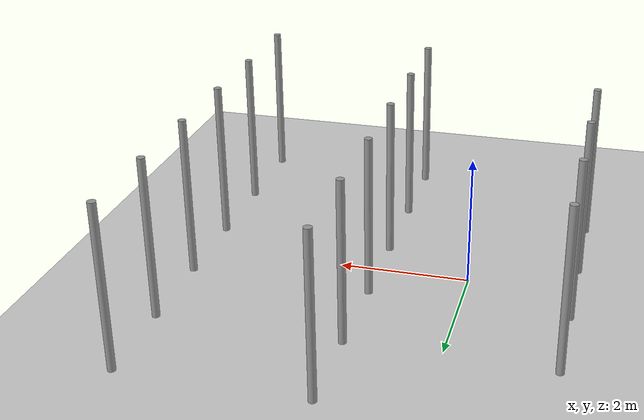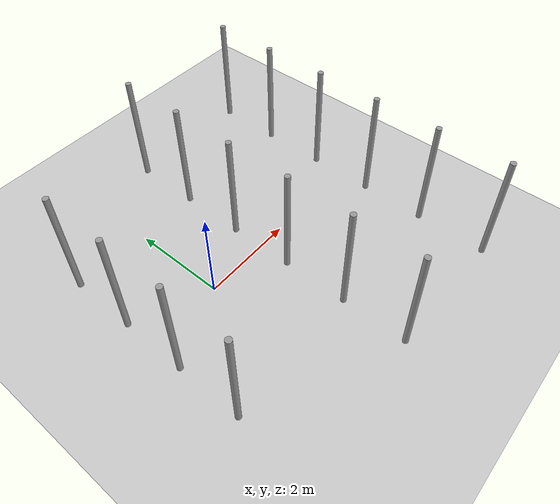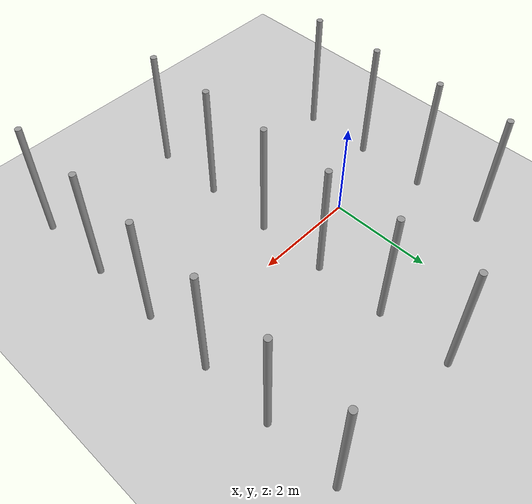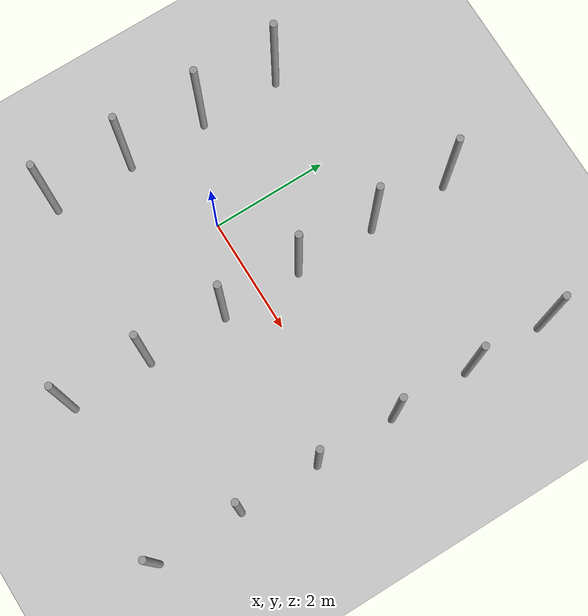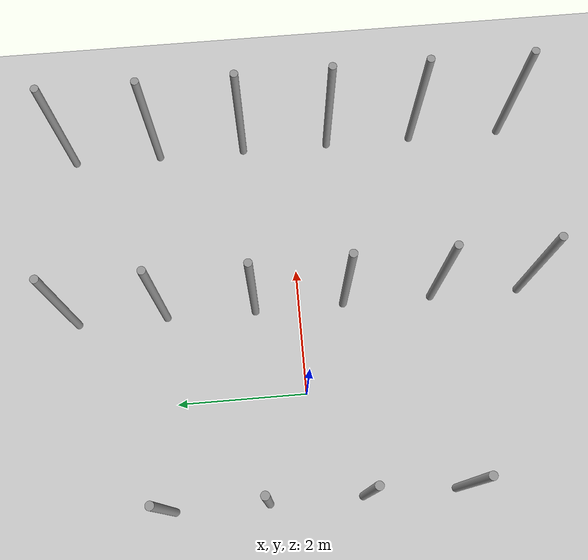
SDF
<sdf version="1.6">
 <world name="default">
  <light name="sun" type="directional">
   <pose>0 0 10 0 -0 0</pose>
   <diffuse>0.8 0.8 0.8 1</diffuse>
   <specular>0.2 0.2 0.2 1</specular>
   <attenuation>
    <range>1000</range>
    <constant>0.9</constant>
    <linear>0.01</linear>
    <quadratic>0.001</quadratic>
   </attenuation>
   <direction>-0.5 0.1 -0.9</direction>
  </light>
  <model name="ground_plane">
   <static>1</static>
   <link name="link">
    <collision name="collision">
     <geometry><plane><normal>0 0 1</normal><size>100 100</size></plane></geometry>
     <surface><friction><ode><mu>100</mu><mu2>50</mu2></ode></friction></surface>
    </collision>
    <visual name="visual">
     <cast_shadows>0</cast_shadows>
     <geometry><plane><normal>0 0 1</normal><size>100 100</size></plane></geometry>
     <material>
      <script><uri>file://media/materials/scripts/gazebo.material</uri><name>Gazebo/Grey</name></script>
     </material>
    </visual>
   </link>
  </model>
  <gravity>0 0 -9.8</gravity>
  <magnetic_field>6e-06 2.3e-05 -4.2e-05</magnetic_field>
  <atmosphere type="adiabatic"/>
  <physics name="default_physics" default="0" type="ode">
   <max_step_size>0.001</max_step_size>
   <real_time_factor>1</real_time_factor>
   <real_time_update_rate>1000</real_time_update_rate>
  </physics>
  <scene><ambient>0.4 0.4 0.4 1</ambient><background>0.7 0.7 0.7 1</background><shadows>1</shadows></scene>
  <spherical_coordinates>
   <surface_model>EARTH_WGS84</surface_model>
   <latitude_deg>0</latitude_deg>
   <longitude_deg>0</longitude_deg>
   <elevation>0</elevation>
   <heading_deg>0</heading_deg>
  </spherical_coordinates>
  <model name="pole">
   <link name="link_0">
    <inertial>
     <mass>0.0364582</mass>
     <inertia>
      <ixx>0.00312124</ixx>
      <ixy>0</ixy>
      <ixz>0</ixz>
      <iyy>0.00312124</iyy>
      <iyz>0</iyz>
      <izz>0.00016615</izz>
     </inertia>
    </inertial>
    <visual name="visual">
     <geometry><cylinder><radius>0.06</radius><length>2.5</length></cylinder></geometry>
     <material>
      <lighting>1</lighting>
      <script><uri>file://media/materials/scripts/gazebo.material</uri><name>Gazebo/Grey</name></script>
      <ambient>0.3 0.3 0.3 1</ambient>
      <diffuse>0.7 0.7 0.7 1</diffuse>
      <specular>0.01 0.01 0.01 1</specular>
      <emissive>0 0 0 1</emissive>
      <shader type="vertex"><normal_map>__default__</normal_map></shader>
     </material>
    </visual>
    <collision name="collision">
     <geometry><cylinder><radius>0.06</radius><length>2.5</length></cylinder></geometry>
     <surface>
      <friction>
       <ode><mu>1</mu><mu2>1</mu2><fdir1>0 0 0</fdir1><slip1>0</slip1><slip2>0</slip2></ode>
       <torsional>
        <coefficient>1</coefficient>
        <patch_radius>0</patch_radius>
        <surface_radius>0</surface_radius>
        <use_patch_radius>1</use_patch_radius>
        <ode><slip>0</slip></ode>
       </torsional>
      </friction>
      <bounce><restitution_coefficient>0</restitution_coefficient><threshold>1e+06</threshold></bounce>
      <contact>
       <collide_without_contact>0</collide_without_contact>
       <collide_without_contact_bitmask>1</collide_without_contact_bitmask>
       <collide_bitmask>1</collide_bitmask>
       <ode>
        <soft_cfm>0</soft_cfm>
        <soft_erp>0.2</soft_erp>
        <kp>1e+13</kp>
        <kd>1</kd>
        <max_vel>0.01</max_vel>
        <min_depth>0</min_depth>
       </ode>
       <bullet>
        <split_impulse>1</split_impulse>
        <split_impulse_penetration_threshold>-0.01</split_impulse_penetration_threshold>
        <soft_cfm>0</soft_cfm>
        <soft_erp>0.2</soft_erp>
        <kp>1e+13</kp>
        <kd>1</kd>
       </bullet>
      </contact>
     </surface>
    </collision>
   </link>
   <static>0</static>
   <pose>1.38801 0.699218 1.24999 0 -2e-06 -0.041029</pose>
  </model>
  <model name="pole_0">
   <link name="link_0">
    <inertial>
     <mass>0.0364582</mass>
     <inertia>
      <ixx>0.00312124</ixx>
      <ixy>0</ixy>
      <ixz>0</ixz>
      <iyy>0.00312124</iyy>
      <iyz>0</iyz>
      <izz>0.00016615</izz>
     </inertia>
    </inertial>
    <visual name="visual">
     <geometry><cylinder><radius>0.06</radius><length>2.5</length></cylinder></geometry>
     <material>
      <lighting>1</lighting>
      <script><uri>file://media/materials/scripts/gazebo.material</uri><name>Gazebo/Grey</name></script>
      <ambient>0.3 0.3 0.3 1</ambient>
      <diffuse>0.7 0.7 0.7 1</diffuse>
      <specular>0.01 0.01 0.01 1</specular>
      <emissive>0 0 0 1</emissive>
      <shader type="vertex"><normal_map>__default__</normal_map></shader>
     </material>
    </visual>
    <collision name="collision">
     <geometry><cylinder><radius>0.06</radius><length>2.5</length></cylinder></geometry>
     <surface>
      <friction>
       <ode><mu>1</mu><mu2>1</mu2><fdir1>0 0 0</fdir1><slip1>0</slip1><slip2>0</slip2></ode>
       <torsional>
        <coefficient>1</coefficient>
        <patch_radius>0</patch_radius>
        <surface_radius>0</surface_radius>
        <use_patch_radius>1</use_patch_radius>
        <ode><slip>0</slip></ode>
       </torsional>
      </friction>
      <bounce><restitution_coefficient>0</restitution_coefficient><threshold>1e+06</threshold></bounce>
      <contact>
       <collide_without_contact>0</collide_without_contact>
       <collide_without_contact_bitmask>1</collide_without_contact_bitmask>
       <collide_bitmask>1</collide_bitmask>
       <ode>
        <soft_cfm>0</soft_cfm>
        <soft_erp>0.2</soft_erp>
        <kp>1e+13</kp>
        <kd>1</kd>
        <max_vel>0.01</max_vel>
        <min_depth>0</min_depth>
       </ode>
       <bullet>
        <split_impulse>1</split_impulse>
        <split_impulse_penetration_threshold>-0.01</split_impulse_penetration_threshold>
        <soft_cfm>0</soft_cfm>
        <soft_erp>0.2</soft_erp>
        <kp>1e+13</kp>
        <kd>1</kd>
       </bullet>
      </contact>
     </surface>
    </collision>
   </link>
   <static>0</static>
   <pose>1.4001 2.10074 1.24999 -1e-06 1e-06 -0.007548</pose>
  </model>
  <model name="pole_1">
   <link name="link_0">
    <inertial>
     <mass>0.0364582</mass>
     <inertia>
      <ixx>0.00312124</ixx>
      <ixy>0</ixy>
      <ixz>0</ixz>
      <iyy>0.00312124</iyy>
      <iyz>0</iyz>
      <izz>0.00016615</izz>
     </inertia>
    </inertial>
    <visual name="visual">
     <geometry><cylinder><radius>0.06</radius><length>2.5</length></cylinder></geometry>
     <material>
      <lighting>1</lighting>
      <script><uri>file://media/materials/scripts/gazebo.material</uri><name>Gazebo/Grey</name></script>
      <ambient>0.3 0.3 0.3 1</ambient>
      <diffuse>0.7 0.7 0.7 1</diffuse>
      <specular>0.01 0.01 0.01 1</specular>
      <emissive>0 0 0 1</emissive>
      <shader type="vertex"><normal_map>__default__</normal_map></shader>
     </material>
    </visual>
    <collision name="collision">
     <geometry><cylinder><radius>0.06</radius><length>2.5</length></cylinder></geometry>
     <surface>
      <friction>
       <ode><mu>1</mu><mu2>1</mu2><fdir1>0 0 0</fdir1><slip1>0</slip1><slip2>0</slip2></ode>
       <torsional>
        <coefficient>1</coefficient>
        <patch_radius>0</patch_radius>
        <surface_radius>0</surface_radius>
        <use_patch_radius>1</use_patch_radius>
        <ode><slip>0</slip></ode>
       </torsional>
      </friction>
      <bounce><restitution_coefficient>0</restitution_coefficient><threshold>1e+06</threshold></bounce>
      <contact>
       <collide_without_contact>0</collide_without_contact>
       <collide_without_contact_bitmask>1</collide_without_contact_bitmask>
       <collide_bitmask>1</collide_bitmask>
       <ode>
        <soft_cfm>0</soft_cfm>
        <soft_erp>0.2</soft_erp>
        <kp>1e+13</kp>
        <kd>1</kd>
        <max_vel>0.01</max_vel>
        <min_depth>0</min_depth>
       </ode>
       <bullet>
        <split_impulse>1</split_impulse>
        <split_impulse_penetration_threshold>-0.01</split_impulse_penetration_threshold>
        <soft_cfm>0</soft_cfm>
        <soft_erp>0.2</soft_erp>
        <kp>1e+13</kp>
        <kd>1</kd>
       </bullet>
      </contact>
     </surface>
    </collision>
   </link>
   <static>0</static>
   <pose>1.40008 -0.699205 1.24999 0 -1e-06 -0.007687</pose>
  </model>
  <model name="pole_2">
   <link name="link_0">
    <inertial>
     <mass>0.0364582</mass>
     <inertia>
      <ixx>0.00312124</ixx>
      <ixy>0</ixy>
      <ixz>0</ixz>
      <iyy>0.00312124</iyy>
      <iyz>0</iyz>
      <izz>0.00016615</izz>
     </inertia>
    </inertial>
    <visual name="visual">
     <geometry><cylinder><radius>0.06</radius><length>2.5</length></cylinder></geometry>
     <material>
      <lighting>1</lighting>
      <script><uri>file://media/materials/scripts/gazebo.material</uri><name>Gazebo/Grey</name></script>
      <ambient>0.3 0.3 0.3 1</ambient>
      <diffuse>0.7 0.7 0.7 1</diffuse>
      <specular>0.01 0.01 0.01 1</specular>
      <emissive>0 0 0 1</emissive>
      <shader type="vertex"><normal_map>__default__</normal_map></shader>
     </material>
    </visual>
    <collision name="collision">
     <geometry><cylinder><radius>0.06</radius><length>2.5</length></cylinder></geometry>
     <surface>
      <friction>
       <ode><mu>1</mu><mu2>1</mu2><fdir1>0 0 0</fdir1><slip1>0</slip1><slip2>0</slip2></ode>
       <torsional>
        <coefficient>1</coefficient>
        <patch_radius>0</patch_radius>
        <surface_radius>0</surface_radius>
        <use_patch_radius>1</use_patch_radius>
        <ode><slip>0</slip></ode>
       </torsional>
      </friction>
      <bounce><restitution_coefficient>0</restitution_coefficient><threshold>1e+06</threshold></bounce>
      <contact>
       <collide_without_contact>0</collide_without_contact>
       <collide_without_contact_bitmask>1</collide_without_contact_bitmask>
       <collide_bitmask>1</collide_bitmask>
       <ode>
        <soft_cfm>0</soft_cfm>
        <soft_erp>0.2</soft_erp>
        <kp>1e+13</kp>
        <kd>1</kd>
        <max_vel>0.01</max_vel>
        <min_depth>0</min_depth>
       </ode>
       <bullet>
        <split_impulse>1</split_impulse>
        <split_impulse_penetration_threshold>-0.01</split_impulse_penetration_threshold>
        <soft_cfm>0</soft_cfm>
        <soft_erp>0.2</soft_erp>
        <kp>1e+13</kp>
        <kd>1</kd>
       </bullet>
      </contact>
     </surface>
    </collision>
   </link>
   <static>0</static>
   <pose>1.4001 -2.09936 1.24999 0 1e-06 -0.007444</pose>
  </model>
  <model name="pole_3">
   <link name="link_0">
    <inertial>
     <mass>0.0364582</mass>
     <inertia>
      <ixx>0.00312124</ixx>
      <ixy>0</ixy>
      <ixz>0</ixz>
      <iyy>0.00312124</iyy>
      <iyz>0</iyz>
      <izz>0.00016615</izz>
     </inertia>
    </inertial>
    <visual name="visual">
     <geometry><cylinder><radius>0.06</radius><length>2.5</length></cylinder></geometry>
     <material>
      <lighting>1</lighting>
      <script><uri>file://media/materials/scripts/gazebo.material</uri><name>Gazebo/Grey</name></script>
      <ambient>0.3 0.3 0.3 1</ambient>
      <diffuse>0.7 0.7 0.7 1</diffuse>
      <specular>0.01 0.01 0.01 1</specular>
      <emissive>0 0 0 1</emissive>
      <shader type="vertex"><normal_map>__default__</normal_map></shader>
     </material>
    </visual>
    <collision name="collision">
     <geometry><cylinder><radius>0.06</radius><length>2.5</length></cylinder></geometry>
     <surface>
      <friction>
       <ode><mu>1</mu><mu2>1</mu2><fdir1>0 0 0</fdir1><slip1>0</slip1><slip2>0</slip2></ode>
       <torsional>
        <coefficient>1</coefficient>
        <patch_radius>0</patch_radius>
        <surface_radius>0</surface_radius>
        <use_patch_radius>1</use_patch_radius>
        <ode><slip>0</slip></ode>
       </torsional>
      </friction>
      <bounce><restitution_coefficient>0</restitution_coefficient><threshold>1e+06</threshold></bounce>
      <contact>
       <collide_without_contact>0</collide_without_contact>
       <collide_without_contact_bitmask>1</collide_without_contact_bitmask>
       <collide_bitmask>1</collide_bitmask>
       <ode>
        <soft_cfm>0</soft_cfm>
        <soft_erp>0.2</soft_erp>
        <kp>1e+13</kp>
        <kd>1</kd>
        <max_vel>0.01</max_vel>
        <min_depth>0</min_depth>
       </ode>
       <bullet>
        <split_impulse>1</split_impulse>
        <split_impulse_penetration_threshold>-0.01</split_impulse_penetration_threshold>
        <soft_cfm>0</soft_cfm>
        <soft_erp>0.2</soft_erp>
        <kp>1e+13</kp>
        <kd>1</kd>
       </bullet>
      </contact>
     </surface>
    </collision>
   </link>
   <static>0</static>
   <pose>1.40013 3.50088 1.24999 -1e-06 1e-06 -0.00859</pose>
  </model>
  <model name="pole_4">
   <link name="link_0">
    <inertial>
     <mass>0.0364582</mass>
     <inertia>
      <ixx>0.00312124</ixx>
      <ixy>0</ixy>
      <ixz>0</ixz>
      <iyy>0.00312124</iyy>
      <iyz>0</iyz>
      <izz>0.00016615</izz>
     </inertia>
    </inertial>
    <visual name="visual">
     <geometry><cylinder><radius>0.06</radius><length>2.5</length></cylinder></geometry>
     <material>
      <lighting>1</lighting>
      <script><uri>file://media/materials/scripts/gazebo.material</uri><name>Gazebo/Grey</name></script>
      <ambient>0.3 0.3 0.3 1</ambient>
      <diffuse>0.7 0.7 0.7 1</diffuse>
      <specular>0.01 0.01 0.01 1</specular>
      <emissive>0 0 0 1</emissive>
      <shader type="vertex"><normal_map>__default__</normal_map></shader>
     </material>
    </visual>
    <collision name="collision">
     <geometry><cylinder><radius>0.06</radius><length>2.5</length></cylinder></geometry>
     <surface>
      <friction>
       <ode><mu>1</mu><mu2>1</mu2><fdir1>0 0 0</fdir1><slip1>0</slip1><slip2>0</slip2></ode>
       <torsional>
        <coefficient>1</coefficient>
        <patch_radius>0</patch_radius>
        <surface_radius>0</surface_radius>
        <use_patch_radius>1</use_patch_radius>
        <ode><slip>0</slip></ode>
       </torsional>
      </friction>
      <bounce><restitution_coefficient>0</restitution_coefficient><threshold>1e+06</threshold></bounce>
      <contact>
       <collide_without_contact>0</collide_without_contact>
       <collide_without_contact_bitmask>1</collide_without_contact_bitmask>
       <collide_bitmask>1</collide_bitmask>
       <ode>
        <soft_cfm>0</soft_cfm>
        <soft_erp>0.2</soft_erp>
        <kp>1e+13</kp>
        <kd>1</kd>
        <max_vel>0.01</max_vel>
        <min_depth>0</min_depth>
       </ode>
       <bullet>
        <split_impulse>1</split_impulse>
        <split_impulse_penetration_threshold>-0.01</split_impulse_penetration_threshold>
        <soft_cfm>0</soft_cfm>
        <soft_erp>0.2</soft_erp>
        <kp>1e+13</kp>
        <kd>1</kd>
       </bullet>
      </contact>
     </surface>
    </collision>
   </link>
   <static>0</static>
   <pose>1.40009 -3.49935 1.25 1e-06 -2e-06 -0.007043</pose>
  </model>
  <model name="pole_0_clone">
   <link name="link_0">
    <inertial>
     <mass>0.0364582</mass>
     <inertia>
      <ixx>0.00312124</ixx>
      <ixy>0</ixy>
      <ixz>0</ixz>
      <iyy>0.00312124</iyy>
      <iyz>0</iyz>
      <izz>0.00016615</izz>
     </inertia>
    </inertial>
    <visual name="visual">
     <geometry><cylinder><radius>0.06</radius><length>2.5</length></cylinder></geometry>
     <material>
      <lighting>1</lighting>
      <script><uri>file://media/materials/scripts/gazebo.material</uri><name>Gazebo/Grey</name></script>
      <ambient>0.3 0.3 0.3 1</ambient>
      <diffuse>0.7 0.7 0.7 1</diffuse>
      <specular>0.01 0.01 0.01 1</specular>
      <emissive>0 0 0 1</emissive>
      <shader type="vertex"><normal_map>__default__</normal_map></shader>
     </material>
    </visual>
    <collision name="collision">
     <geometry><cylinder><radius>0.06</radius><length>2.5</length></cylinder></geometry>
     <surface>
      <friction>
       <ode><mu>1</mu><mu2>1</mu2><fdir1>0 0 0</fdir1><slip1>0</slip1><slip2>0</slip2></ode>
       <torsional>
        <coefficient>1</coefficient>
        <patch_radius>0</patch_radius>
        <surface_radius>0</surface_radius>
        <use_patch_radius>1</use_patch_radius>
        <ode><slip>0</slip></ode>
       </torsional>
      </friction>
      <bounce><restitution_coefficient>0</restitution_coefficient><threshold>1e+06</threshold></bounce>
      <contact>
       <collide_without_contact>0</collide_without_contact>
       <collide_without_contact_bitmask>1</collide_without_contact_bitmask>
       <collide_bitmask>1</collide_bitmask>
       <ode>
        <soft_cfm>0</soft_cfm>
        <soft_erp>0.2</soft_erp>
        <kp>1e+13</kp>
        <kd>1</kd>
        <max_vel>0.01</max_vel>
        <min_depth>0</min_depth>
       </ode>
       <bullet>
        <split_impulse>1</split_impulse>
        <split_impulse_penetration_threshold>-0.01</split_impulse_penetration_threshold>
        <soft_cfm>0</soft_cfm>
        <soft_erp>0.2</soft_erp>
        <kp>1e+13</kp>
        <kd>1</kd>
       </bullet>
      </contact>
     </surface>
    </collision>
   </link>
   <static>0</static>
   <pose>-1.59994 2.10604 1.24999 -1e-06 0 -0.008506</pose>
  </model>
  <model name="pole_clone">
   <link name="link_0">
    <inertial>
     <mass>0.0364582</mass>
     <inertia>
      <ixx>0.00312124</ixx>
      <ixy>0</ixy>
      <ixz>0</ixz>
      <iyy>0.00312124</iyy>
      <iyz>0</iyz>
      <izz>0.00016615</izz>
     </inertia>
    </inertial>
    <visual name="visual">
     <geometry><cylinder><radius>0.06</radius><length>2.5</length></cylinder></geometry>
     <material>
      <lighting>1</lighting>
      <script><uri>file://media/materials/scripts/gazebo.material</uri><name>Gazebo/Grey</name></script>
      <ambient>0.3 0.3 0.3 1</ambient>
      <diffuse>0.7 0.7 0.7 1</diffuse>
      <specular>0.01 0.01 0.01 1</specular>
      <emissive>0 0 0 1</emissive>
      <shader type="vertex"><normal_map>__default__</normal_map></shader>
     </material>
    </visual>
    <collision name="collision">
     <geometry><cylinder><radius>0.06</radius><length>2.5</length></cylinder></geometry>
     <surface>
      <friction>
       <ode><mu>1</mu><mu2>1</mu2><fdir1>0 0 0</fdir1><slip1>0</slip1><slip2>0</slip2></ode>
       <torsional>
        <coefficient>1</coefficient>
        <patch_radius>0</patch_radius>
        <surface_radius>0</surface_radius>
        <use_patch_radius>1</use_patch_radius>
        <ode><slip>0</slip></ode>
       </torsional>
      </friction>
      <bounce><restitution_coefficient>0</restitution_coefficient><threshold>1e+06</threshold></bounce>
      <contact>
       <collide_without_contact>0</collide_without_contact>
       <collide_without_contact_bitmask>1</collide_without_contact_bitmask>
       <collide_bitmask>1</collide_bitmask>
       <ode>
        <soft_cfm>0</soft_cfm>
        <soft_erp>0.2</soft_erp>
        <kp>1e+13</kp>
        <kd>1</kd>
        <max_vel>0.01</max_vel>
        <min_depth>0</min_depth>
       </ode>
       <bullet>
        <split_impulse>1</split_impulse>
        <split_impulse_penetration_threshold>-0.01</split_impulse_penetration_threshold>
        <soft_cfm>0</soft_cfm>
        <soft_erp>0.2</soft_erp>
        <kp>1e+13</kp>
        <kd>1</kd>
       </bullet>
      </contact>
     </surface>
    </collision>
   </link>
   <static>0</static>
   <pose>-1.60057 0.6998 1.24999 -1e-06 1e-06 0.016114</pose>
  </model>
  <model name="pole_clone_0">
   <link name="link_0">
    <inertial>
     <mass>0.0364582</mass>
     <inertia>
      <ixx>0.00312124</ixx>
      <ixy>0</ixy>
      <ixz>0</ixz>
      <iyy>0.00312124</iyy>
      <iyz>0</iyz>
      <izz>0.00016615</izz>
     </inertia>
    </inertial>
    <visual name="visual">
     <geometry><cylinder><radius>0.06</radius><length>2.5</length></cylinder></geometry>
     <material>
      <lighting>1</lighting>
      <script><uri>file://media/materials/scripts/gazebo.material</uri><name>Gazebo/Grey</name></script>
      <ambient>0.3 0.3 0.3 1</ambient>
      <diffuse>0.7 0.7 0.7 1</diffuse>
      <specular>0.01 0.01 0.01 1</specular>
      <emissive>0 0 0 1</emissive>
      <shader type="vertex"><normal_map>__default__</normal_map></shader>
     </material>
    </visual>
    <collision name="collision">
     <geometry><cylinder><radius>0.06</radius><length>2.5</length></cylinder></geometry>
     <surface>
      <friction>
       <ode><mu>1</mu><mu2>1</mu2><fdir1>0 0 0</fdir1><slip1>0</slip1><slip2>0</slip2></ode>
       <torsional>
        <coefficient>1</coefficient>
        <patch_radius>0</patch_radius>
        <surface_radius>0</surface_radius>
        <use_patch_radius>1</use_patch_radius>
        <ode><slip>0</slip></ode>
       </torsional>
      </friction>
      <bounce><restitution_coefficient>0</restitution_coefficient><threshold>1e+06</threshold></bounce>
      <contact>
       <collide_without_contact>0</collide_without_contact>
       <collide_without_contact_bitmask>1</collide_without_contact_bitmask>
       <collide_bitmask>1</collide_bitmask>
       <ode>
        <soft_cfm>0</soft_cfm>
        <soft_erp>0.2</soft_erp>
        <kp>1e+13</kp>
        <kd>1</kd>
        <max_vel>0.01</max_vel>
        <min_depth>0</min_depth>
       </ode>
       <bullet>
        <split_impulse>1</split_impulse>
        <split_impulse_penetration_threshold>-0.01</split_impulse_penetration_threshold>
        <soft_cfm>0</soft_cfm>
        <soft_erp>0.2</soft_erp>
        <kp>1e+13</kp>
        <kd>1</kd>
       </bullet>
      </contact>
     </surface>
    </collision>
   </link>
   <static>0</static>
   <pose>4.20004 0.700387 1.24999 -1e-06 -1e-06 0.046768</pose>
  </model>
  <model name="pole_clone_1">
   <link name="link_0">
    <inertial>
     <mass>0.0364582</mass>
     <inertia>
      <ixx>0.00312124</ixx>
      <ixy>0</ixy>
      <ixz>0</ixz>
      <iyy>0.00312124</iyy>
      <iyz>0</iyz>
      <izz>0.00016615</izz>
     </inertia>
    </inertial>
    <visual name="visual">
     <geometry><cylinder><radius>0.06</radius><length>2.5</length></cylinder></geometry>
     <material>
      <lighting>1</lighting>
      <script><uri>file://media/materials/scripts/gazebo.material</uri><name>Gazebo/Grey</name></script>
      <ambient>0.3 0.3 0.3 1</ambient>
      <diffuse>0.7 0.7 0.7 1</diffuse>
      <specular>0.01 0.01 0.01 1</specular>
      <emissive>0 0 0 1</emissive>
      <shader type="vertex"><normal_map>__default__</normal_map></shader>
     </material>
    </visual>
    <collision name="collision">
     <geometry><cylinder><radius>0.06</radius><length>2.5</length></cylinder></geometry>
     <surface>
      <friction>
       <ode><mu>1</mu><mu2>1</mu2><fdir1>0 0 0</fdir1><slip1>0</slip1><slip2>0</slip2></ode>
       <torsional>
        <coefficient>1</coefficient>
        <patch_radius>0</patch_radius>
        <surface_radius>0</surface_radius>
        <use_patch_radius>1</use_patch_radius>
        <ode><slip>0</slip></ode>
       </torsional>
      </friction>
      <bounce><restitution_coefficient>0</restitution_coefficient><threshold>1e+06</threshold></bounce>
      <contact>
       <collide_without_contact>0</collide_without_contact>
       <collide_without_contact_bitmask>1</collide_without_contact_bitmask>
       <collide_bitmask>1</collide_bitmask>
       <ode>
        <soft_cfm>0</soft_cfm>
        <soft_erp>0.2</soft_erp>
        <kp>1e+13</kp>
        <kd>1</kd>
        <max_vel>0.01</max_vel>
        <min_depth>0</min_depth>
       </ode>
       <bullet>
        <split_impulse>1</split_impulse>
        <split_impulse_penetration_threshold>-0.01</split_impulse_penetration_threshold>
        <soft_cfm>0</soft_cfm>
        <soft_erp>0.2</soft_erp>
        <kp>1e+13</kp>
        <kd>1</kd>
       </bullet>
      </contact>
     </surface>
    </collision>
   </link>
   <static>0</static>
   <pose>4.19733 2.09848 1.25 -1e-06 1e-06 -0.03573</pose>
  </model>
  <model name="pole_clone_2">
   <link name="link_0">
    <inertial>
     <mass>0.0364582</mass>
     <inertia>
      <ixx>0.00312124</ixx>
      <ixy>0</ixy>
      <ixz>0</ixz>
      <iyy>0.00312124</iyy>
      <iyz>0</iyz>
      <izz>0.00016615</izz>
     </inertia>
    </inertial>
    <visual name="visual">
     <geometry><cylinder><radius>0.06</radius><length>2.5</length></cylinder></geometry>
     <material>
      <lighting>1</lighting>
      <script><uri>file://media/materials/scripts/gazebo.material</uri><name>Gazebo/Grey</name></script>
      <ambient>0.3 0.3 0.3 1</ambient>
      <diffuse>0.7 0.7 0.7 1</diffuse>
      <specular>0.01 0.01 0.01 1</specular>
      <emissive>0 0 0 1</emissive>
      <shader type="vertex"><normal_map>__default__</normal_map></shader>
     </material>
    </visual>
    <collision name="collision">
     <geometry><cylinder><radius>0.06</radius><length>2.5</length></cylinder></geometry>
     <surface>
      <friction>
       <ode><mu>1</mu><mu2>1</mu2><fdir1>0 0 0</fdir1><slip1>0</slip1><slip2>0</slip2></ode>
       <torsional>
        <coefficient>1</coefficient>
        <patch_radius>0</patch_radius>
        <surface_radius>0</surface_radius>
        <use_patch_radius>1</use_patch_radius>
        <ode><slip>0</slip></ode>
       </torsional>
      </friction>
      <bounce><restitution_coefficient>0</restitution_coefficient><threshold>1e+06</threshold></bounce>
      <contact>
       <collide_without_contact>0</collide_without_contact>
       <collide_without_contact_bitmask>1</collide_without_contact_bitmask>
       <collide_bitmask>1</collide_bitmask>
       <ode>
        <soft_cfm>0</soft_cfm>
        <soft_erp>0.2</soft_erp>
        <kp>1e+13</kp>
        <kd>1</kd>
        <max_vel>0.01</max_vel>
        <min_depth>0</min_depth>
       </ode>
       <bullet>
        <split_impulse>1</split_impulse>
        <split_impulse_penetration_threshold>-0.01</split_impulse_penetration_threshold>
        <soft_cfm>0</soft_cfm>
        <soft_erp>0.2</soft_erp>
        <kp>1e+13</kp>
        <kd>1</kd>
       </bullet>
      </contact>
     </surface>
    </collision>
   </link>
   <static>0</static>
   <pose>4.20026 -0.699698 1.25 -1e-06 -1e-06 0.015434</pose>
  </model>
  <model name="pole_clone_3">
   <link name="link_0">
    <inertial>
     <mass>0.0364582</mass>
     <inertia>
      <ixx>0.00312124</ixx>
      <ixy>0</ixy>
      <ixz>0</ixz>
      <iyy>0.00312124</iyy>
      <iyz>0</iyz>
      <izz>0.00016615</izz>
     </inertia>
    </inertial>
    <visual name="visual">
     <geometry><cylinder><radius>0.06</radius><length>2.5</length></cylinder></geometry>
     <material>
      <lighting>1</lighting>
      <script><uri>file://media/materials/scripts/gazebo.material</uri><name>Gazebo/Grey</name></script>
      <ambient>0.3 0.3 0.3 1</ambient>
      <diffuse>0.7 0.7 0.7 1</diffuse>
      <specular>0.01 0.01 0.01 1</specular>
      <emissive>0 0 0 1</emissive>
      <shader type="vertex"><normal_map>__default__</normal_map></shader>
     </material>
    </visual>
    <collision name="collision">
     <geometry><cylinder><radius>0.06</radius><length>2.5</length></cylinder></geometry>
     <surface>
      <friction>
       <ode><mu>1</mu><mu2>1</mu2><fdir1>0 0 0</fdir1><slip1>0</slip1><slip2>0</slip2></ode>
       <torsional>
        <coefficient>1</coefficient>
        <patch_radius>0</patch_radius>
        <surface_radius>0</surface_radius>
        <use_patch_radius>1</use_patch_radius>
        <ode><slip>0</slip></ode>
       </torsional>
      </friction>
      <bounce><restitution_coefficient>0</restitution_coefficient><threshold>1e+06</threshold></bounce>
      <contact>
       <collide_without_contact>0</collide_without_contact>
       <collide_without_contact_bitmask>1</collide_without_contact_bitmask>
       <collide_bitmask>1</collide_bitmask>
       <ode>
        <soft_cfm>0</soft_cfm>
        <soft_erp>0.2</soft_erp>
        <kp>1e+13</kp>
        <kd>1</kd>
        <max_vel>0.01</max_vel>
        <min_depth>0</min_depth>
       </ode>
       <bullet>
        <split_impulse>1</split_impulse>
        <split_impulse_penetration_threshold>-0.01</split_impulse_penetration_threshold>
        <soft_cfm>0</soft_cfm>
        <soft_erp>0.2</soft_erp>
        <kp>1e+13</kp>
        <kd>1</kd>
       </bullet>
      </contact>
     </surface>
    </collision>
   </link>
   <static>0</static>
   <pose>4.20005 -2.0996 1.25 -1e-06 3e-06 0.040532</pose>
  </model>
  <model name="pole_clone_clone">
   <link name="link_0">
    <inertial>
     <mass>0.0364582</mass>
     <inertia>
      <ixx>0.00312124</ixx>
      <ixy>0</ixy>
      <ixz>0</ixz>
      <iyy>0.00312124</iyy>
      <iyz>0</iyz>
      <izz>0.00016615</izz>
     </inertia>
    </inertial>
    <visual name="visual">
     <geometry><cylinder><radius>0.06</radius><length>2.5</length></cylinder></geometry>
     <material>
      <lighting>1</lighting>
      <script><uri>file://media/materials/scripts/gazebo.material</uri><name>Gazebo/Grey</name></script>
      <ambient>0.3 0.3 0.3 1</ambient>
      <diffuse>0.7 0.7 0.7 1</diffuse>
      <specular>0.01 0.01 0.01 1</specular>
      <emissive>0 0 0 1</emissive>
      <shader type="vertex"><normal_map>__default__</normal_map></shader>
     </material>
    </visual>
    <collision name="collision">
     <geometry><cylinder><radius>0.06</radius><length>2.5</length></cylinder></geometry>
     <surface>
      <friction>
       <ode><mu>1</mu><mu2>1</mu2><fdir1>0 0 0</fdir1><slip1>0</slip1><slip2>0</slip2></ode>
       <torsional>
        <coefficient>1</coefficient>
        <patch_radius>0</patch_radius>
        <surface_radius>0</surface_radius>
        <use_patch_radius>1</use_patch_radius>
        <ode><slip>0</slip></ode>
       </torsional>
      </friction>
      <bounce><restitution_coefficient>0</restitution_coefficient><threshold>1e+06</threshold></bounce>
      <contact>
       <collide_without_contact>0</collide_without_contact>
       <collide_without_contact_bitmask>1</collide_without_contact_bitmask>
       <collide_bitmask>1</collide_bitmask>
       <ode>
        <soft_cfm>0</soft_cfm>
        <soft_erp>0.2</soft_erp>
        <kp>1e+13</kp>
        <kd>1</kd>
        <max_vel>0.01</max_vel>
        <min_depth>0</min_depth>
       </ode>
       <bullet>
        <split_impulse>1</split_impulse>
        <split_impulse_penetration_threshold>-0.01</split_impulse_penetration_threshold>
        <soft_cfm>0</soft_cfm>
        <soft_erp>0.2</soft_erp>
        <kp>1e+13</kp>
        <kd>1</kd>
       </bullet>
      </contact>
     </surface>
    </collision>
   </link>
   <static>0</static>
   <pose>-1.59996 -0.699784 1.24999 -1e-06 -0 0.016225</pose>
  </model>
  <model name="pole_clone_clone_0">
   <link name="link_0">
    <inertial>
     <mass>0.0364582</mass>
     <inertia>
      <ixx>0.00312124</ixx>
      <ixy>0</ixy>
      <ixz>0</ixz>
      <iyy>0.00312124</iyy>
      <iyz>0</iyz>
      <izz>0.00016615</izz>
     </inertia>
    </inertial>
    <visual name="visual">
     <geometry><cylinder><radius>0.06</radius><length>2.5</length></cylinder></geometry>
     <material>
      <lighting>1</lighting>
      <script><uri>file://media/materials/scripts/gazebo.material</uri><name>Gazebo/Grey</name></script>
      <ambient>0.3 0.3 0.3 1</ambient>
      <diffuse>0.7 0.7 0.7 1</diffuse>
      <specular>0.01 0.01 0.01 1</specular>
      <emissive>0 0 0 1</emissive>
      <shader type="vertex"><normal_map>__default__</normal_map></shader>
     </material>
    </visual>
    <collision name="collision">
     <geometry><cylinder><radius>0.06</radius><length>2.5</length></cylinder></geometry>
     <surface>
      <friction>
       <ode><mu>1</mu><mu2>1</mu2><fdir1>0 0 0</fdir1><slip1>0</slip1><slip2>0</slip2></ode>
       <torsional>
        <coefficient>1</coefficient>
        <patch_radius>0</patch_radius>
        <surface_radius>0</surface_radius>
        <use_patch_radius>1</use_patch_radius>
        <ode><slip>0</slip></ode>
       </torsional>
      </friction>
      <bounce><restitution_coefficient>0</restitution_coefficient><threshold>1e+06</threshold></bounce>
      <contact>
       <collide_without_contact>0</collide_without_contact>
       <collide_without_contact_bitmask>1</collide_without_contact_bitmask>
       <collide_bitmask>1</collide_bitmask>
       <ode>
        <soft_cfm>0</soft_cfm>
        <soft_erp>0.2</soft_erp>
        <kp>1e+13</kp>
        <kd>1</kd>
        <max_vel>0.01</max_vel>
        <min_depth>0</min_depth>
       </ode>
       <bullet>
        <split_impulse>1</split_impulse>
        <split_impulse_penetration_threshold>-0.01</split_impulse_penetration_threshold>
        <soft_cfm>0</soft_cfm>
        <soft_erp>0.2</soft_erp>
        <kp>1e+13</kp>
        <kd>1</kd>
       </bullet>
      </contact>
     </surface>
    </collision>
   </link>
   <static>0</static>
   <pose>-1.59998 -2.09985 1.24999 -1e-06 -1e-06 0.016208</pose>
  </model>
  <model name="pole_4_clone">
   <link name="link_0">
    <inertial>
     <mass>0.0364582</mass>
     <inertia>
      <ixx>0.00312124</ixx>
      <ixy>0</ixy>
      <ixz>0</ixz>
      <iyy>0.00312124</iyy>
      <iyz>0</iyz>
      <izz>0.00016615</izz>
     </inertia>
    </inertial>
    <visual name="visual">
     <geometry><cylinder><radius>0.06</radius><length>2.5</length></cylinder></geometry>
     <material>
      <lighting>1</lighting>
      <script><uri>file://media/materials/scripts/gazebo.material</uri><name>Gazebo/Grey</name></script>
      <ambient>0.3 0.3 0.3 1</ambient>
      <diffuse>0.7 0.7 0.7 1</diffuse>
      <specular>0.01 0.01 0.01 1</specular>
      <emissive>0 0 0 1</emissive>
      <shader type="vertex"><normal_map>__default__</normal_map></shader>
     </material>
    </visual>
    <collision name="collision">
     <geometry><cylinder><radius>0.06</radius><length>2.5</length></cylinder></geometry>
     <surface>
      <friction>
       <ode><mu>1</mu><mu2>1</mu2><fdir1>0 0 0</fdir1><slip1>0</slip1><slip2>0</slip2></ode>
       <torsional>
        <coefficient>1</coefficient>
        <patch_radius>0</patch_radius>
        <surface_radius>0</surface_radius>
        <use_patch_radius>1</use_patch_radius>
        <ode><slip>0</slip></ode>
       </torsional>
      </friction>
      <bounce><restitution_coefficient>0</restitution_coefficient><threshold>1e+06</threshold></bounce>
      <contact>
       <collide_without_contact>0</collide_without_contact>
       <collide_without_contact_bitmask>1</collide_without_contact_bitmask>
       <collide_bitmask>1</collide_bitmask>
       <ode>
        <soft_cfm>0</soft_cfm>
        <soft_erp>0.2</soft_erp>
        <kp>1e+13</kp>
        <kd>1</kd>
        <max_vel>0.01</max_vel>
        <min_depth>0</min_depth>
       </ode>
       <bullet>
        <split_impulse>1</split_impulse>
        <split_impulse_penetration_threshold>-0.01</split_impulse_penetration_threshold>
        <soft_cfm>0</soft_cfm>
        <soft_erp>0.2</soft_erp>
        <kp>1e+13</kp>
        <kd>1</kd>
       </bullet>
      </contact>
     </surface>
    </collision>
   </link>
   <static>0</static>
   <pose>4.20001 -3.59984 1.24999 0 1e-06 -0.007892</pose>
  </model>
  <model name="pole_3_clone">
   <link name="link_0">
    <inertial>
     <mass>0.0364582</mass>
     <inertia>
      <ixx>0.00312124</ixx>
      <ixy>0</ixy>
      <ixz>0</ixz>
      <iyy>0.00312124</iyy>
      <iyz>0</iyz>
      <izz>0.00016615</izz>
     </inertia>
    </inertial>
    <visual name="visual">
     <geometry><cylinder><radius>0.06</radius><length>2.5</length></cylinder></geometry>
     <material>
      <lighting>1</lighting>
      <script><uri>file://media/materials/scripts/gazebo.material</uri><name>Gazebo/Grey</name></script>
      <ambient>0.3 0.3 0.3 1</ambient>
      <diffuse>0.7 0.7 0.7 1</diffuse>
      <specular>0.01 0.01 0.01 1</specular>
      <emissive>0 0 0 1</emissive>
      <shader type="vertex"><normal_map>__default__</normal_map></shader>
     </material>
    </visual>
    <collision name="collision">
     <geometry><cylinder><radius>0.06</radius><length>2.5</length></cylinder></geometry>
     <surface>
      <friction>
       <ode><mu>1</mu><mu2>1</mu2><fdir1>0 0 0</fdir1><slip1>0</slip1><slip2>0</slip2></ode>
       <torsional>
        <coefficient>1</coefficient>
        <patch_radius>0</patch_radius>
        <surface_radius>0</surface_radius>
        <use_patch_radius>1</use_patch_radius>
        <ode><slip>0</slip></ode>
       </torsional>
      </friction>
      <bounce><restitution_coefficient>0</restitution_coefficient><threshold>1e+06</threshold></bounce>
      <contact>
       <collide_without_contact>0</collide_without_contact>
       <collide_without_contact_bitmask>1</collide_without_contact_bitmask>
       <collide_bitmask>1</collide_bitmask>
       <ode>
        <soft_cfm>0</soft_cfm>
        <soft_erp>0.2</soft_erp>
        <kp>1e+13</kp>
        <kd>1</kd>
        <max_vel>0.01</max_vel>
        <min_depth>0</min_depth>
       </ode>
       <bullet>
        <split_impulse>1</split_impulse>
        <split_impulse_penetration_threshold>-0.01</split_impulse_penetration_threshold>
        <soft_cfm>0</soft_cfm>
        <soft_erp>0.2</soft_erp>
        <kp>1e+13</kp>
        <kd>1</kd>
       </bullet>
      </contact>
     </surface>
    </collision>
   </link>
   <static>0</static>
   <pose>4.2 3.50003 1.25 -1e-06 -1e-06 -0.008488</pose>
  </model>
 </world>
</sdf>
